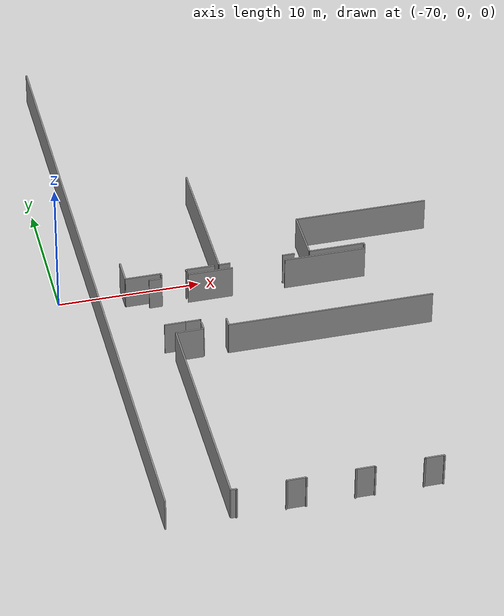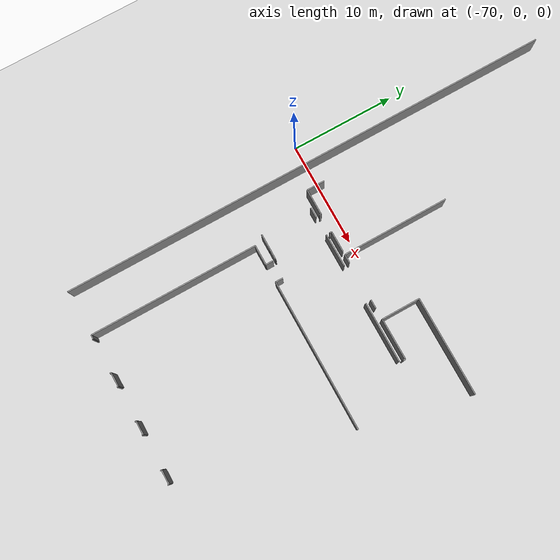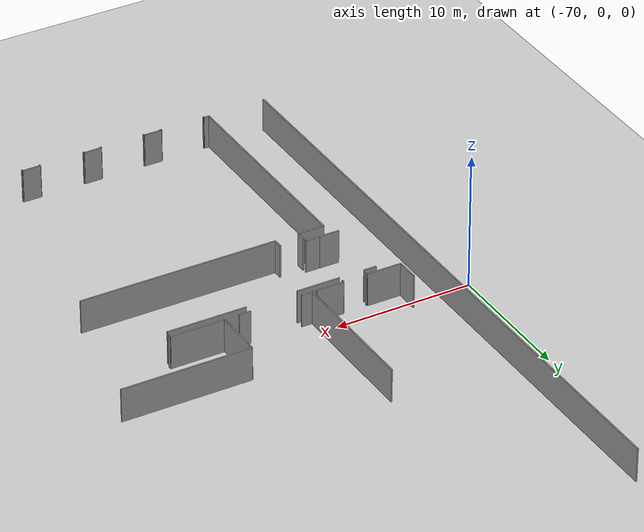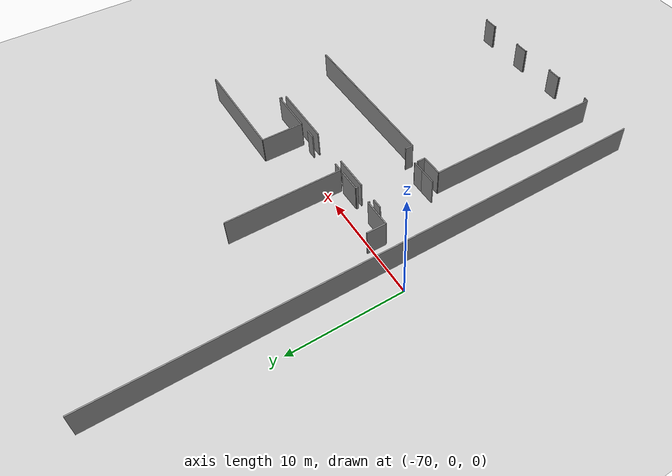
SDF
<sdf version="1.6">
 <world name="default">
  <model name="ground_plane">
   <static>1</static>
   <link name="link">
    <collision name="collision">
     <geometry><plane><normal>0 0 1</normal><size>100 100</size></plane></geometry>
     <surface><friction><ode><mu>100</mu><mu2>50</mu2></ode></friction></surface>
    </collision>
    <visual name="visual">
     <cast_shadows>0</cast_shadows>
     <geometry><plane><normal>0 0 1</normal><size>100 100</size></plane></geometry>
     <material>
      <script><uri>file://media/materials/scripts/gazebo.material</uri><name>Gazebo/Grey</name></script>
     </material>
    </visual>
   </link>
  </model>
  <model name="0510032194_A_40_1_102">
   <static>1</static>
   <link name="Wall_370">
    <collision name="Wall_370_Collision">
     <geometry><box><size>3.68148072816 0.1 2.5</size></box></geometry>
     <pose>1.84074036408 0 1.25 0 0 0</pose>
    </collision>
    <visual name="Wall_370_Visual">
     <pose>1.84074036408 0 1.25 0 0 0</pose>
     <geometry><box><size>3.68148072816 0.1 2.5</size></box></geometry>
     <material>
      <script><uri>file://media/materials/scripts/gazebo.material</uri><name>Gazebo/Grey</name></script>
      <ambient>1 1 1 1</ambient>
     </material>
    </visual>
    <pose>15.3845469338 -25.0689006407 0 0 0 1.57079632679</pose>
   </link>
   <link name="Wall_371">
    <collision name="Wall_371_Collision">
     <geometry><box><size>9.4392606529 0.1 2.5</size></box></geometry>
     <pose>4.71963032645 0 1.25 0 0 0</pose>
    </collision>
    <visual name="Wall_371_Visual">
     <pose>4.71963032645 0 1.25 0 0 0</pose>
     <geometry><box><size>9.4392606529 0.1 2.5</size></box></geometry>
     <material>
      <script><uri>file://media/materials/scripts/gazebo.material</uri><name>Gazebo/Grey</name></script>
      <ambient>1 1 1 1</ambient>
     </material>
    </visual>
    <pose>15.3845469338 -21.3874199125 0 0 0 0.0</pose>
   </link>
   <link name="Wall_375">
    <collision name="Wall_375_Collision">
     <geometry><box><size>0.215219159972 0.1 2.5</size></box></geometry>
     <pose>0.107609579986 0 1.25 0 0 0</pose>
    </collision>
    <visual name="Wall_375_Visual">
     <pose>0.107609579986 0 1.25 0 0 0</pose>
     <geometry><box><size>0.215219159972 0.1 2.5</size></box></geometry>
     <material>
      <script><uri>file://media/materials/scripts/gazebo.material</uri><name>Gazebo/Grey</name></script>
      <ambient>1 1 1 1</ambient>
     </material>
    </visual>
    <pose>19.3267568392 -25.2786535137 0 0 0 1.57079632679</pose>
   </link>
   <link name="Wall_376">
    <collision name="Wall_376_Collision">
     <geometry><box><size>3.94221369521 0.1 2.5</size></box></geometry>
     <pose>1.9711068476 0 1.25 0 0 0</pose>
    </collision>
    <visual name="Wall_376_Visual">
     <pose>1.9711068476 0 1.25 0 0 0</pose>
     <geometry><box><size>3.94221369521 0.1 2.5</size></box></geometry>
     <material>
      <script><uri>file://media/materials/scripts/gazebo.material</uri><name>Gazebo/Grey</name></script>
      <ambient>1 1 1 1</ambient>
     </material>
    </visual>
    <pose>19.3267568392 -25.0634343537 0 0 0 -3.14020604973</pose>
   </link>
   <link name="Wall_377">
    <collision name="Wall_377_Collision">
     <geometry><box><size>16.0416454795 0.1 2.5</size></box></geometry>
     <pose>8.02082273975 0 1.25 0 0 0</pose>
    </collision>
    <visual name="Wall_377_Visual">
     <pose>8.02082273975 0 1.25 0 0 0</pose>
     <geometry><box><size>16.0416454795 0.1 2.5</size></box></geometry>
     <material>
      <script><uri>file://media/materials/scripts/gazebo.material</uri><name>Gazebo/Grey</name></script>
      <ambient>1 1 1 1</ambient>
     </material>
    </visual>
    <pose>4.35535950371 -47.5795789688 0 0 0 1.57079632679</pose>
   </link>
   <link name="Wall_378">
    <collision name="Wall_378_Collision">
     <geometry><box><size>1.93582833316 0.1 2.5</size></box></geometry>
     <pose>0.967914166582 0 1.25 0 0 0</pose>
    </collision>
    <visual name="Wall_378_Visual">
     <pose>0.967914166582 0 1.25 0 0 0</pose>
     <geometry><box><size>1.93582833316 0.1 2.5</size></box></geometry>
     <material>
      <script><uri>file://media/materials/scripts/gazebo.material</uri><name>Gazebo/Grey</name></script>
      <ambient>1 1 1 1</ambient>
     </material>
    </visual>
    <pose>4.35535950371 -31.5379334893 0 0 0 0.0</pose>
   </link>
   <link name="Wall_379">
    <collision name="Wall_379_Collision">
     <geometry><box><size>0.701591579376 0.1 2.5</size></box></geometry>
     <pose>0.350795789688 0 1.25 0 0 0</pose>
    </collision>
    <visual name="Wall_379_Visual">
     <pose>0.350795789688 0 1.25 0 0 0</pose>
     <geometry><box><size>0.701591579376 0.1 2.5</size></box></geometry>
     <material>
      <script><uri>file://media/materials/scripts/gazebo.material</uri><name>Gazebo/Grey</name></script>
      <ambient>1 1 1 1</ambient>
     </material>
    </visual>
    <pose>6.29118783688 -31.5379334893 0 0 0 1.57079632679</pose>
   </link>
   <link name="Wall_380">
    <collision name="Wall_380_Collision">
     <geometry><box><size>0.69370995627 0.1 2.5</size></box></geometry>
     <pose>0.346854978135 0 1.25 0 0 0</pose>
    </collision>
    <visual name="Wall_380_Visual">
     <pose>0.346854978135 0 1.25 0 0 0</pose>
     <geometry><box><size>0.69370995627 0.1 2.5</size></box></geometry>
     <material>
      <script><uri>file://media/materials/scripts/gazebo.material</uri><name>Gazebo/Grey</name></script>
      <ambient>1 1 1 1</ambient>
     </material>
    </visual>
    <pose>8.04561171565 -30.8363419099 0 0 0 -1.57079632679</pose>
   </link>
   <link name="Wall_381">
    <collision name="Wall_381_Collision">
     <geometry><box><size>14.4658293501 0.1 2.5</size></box></geometry>
     <pose>7.23291467507 0 1.25 0 0 0</pose>
    </collision>
    <visual name="Wall_381_Visual">
     <pose>7.23291467507 0 1.25 0 0 0</pose>
     <geometry><box><size>14.4658293501 0.1 2.5</size></box></geometry>
     <material>
      <script><uri>file://media/materials/scripts/gazebo.material</uri><name>Gazebo/Grey</name></script>
      <ambient>1 1 1 1</ambient>
     </material>
    </visual>
    <pose>8.04561171565 -31.5300518662 0 0 0 0.0</pose>
   </link>
   <link name="Wall_386">
    <collision name="Wall_386_Collision">
     <geometry><box><size>0.124072002441 0.1 2.5</size></box></geometry>
     <pose>0.0620360012204 0 1.25 0 0 0</pose>
    </collision>
    <visual name="Wall_386_Visual">
     <pose>0.0620360012204 0 1.25 0 0 0</pose>
     <geometry><box><size>0.124072002441 0.1 2.5</size></box></geometry>
     <material>
      <script><uri>file://media/materials/scripts/gazebo.material</uri><name>Gazebo/Grey</name></script>
      <ambient>1 1 1 1</ambient>
     </material>
    </visual>
    <pose>18.6925404251 -47.6858537578 0 0 0 1.57079632679</pose>
   </link>
   <link name="Wall_387">
    <collision name="Wall_387_Collision">
     <geometry><box><size>1.32449405065 0.1 2.5</size></box></geometry>
     <pose>0.662247025323 0 1.25 0 0 0</pose>
    </collision>
    <visual name="Wall_387_Visual">
     <pose>0.662247025323 0 1.25 0 0 0</pose>
     <geometry><box><size>1.32449405065 0.1 2.5</size></box></geometry>
     <material>
      <script><uri>file://media/materials/scripts/gazebo.material</uri><name>Gazebo/Grey</name></script>
      <ambient>1 1 1 1</ambient>
     </material>
    </visual>
    <pose>18.6925404251 -47.5617817553 0 0 0 3.14159265359</pose>
   </link>
   <link name="Wall_388">
    <collision name="Wall_388_Collision">
     <geometry><box><size>0.124072002441 0.1 2.5</size></box></geometry>
     <pose>0.0620360012204 0 1.25 0 0 0</pose>
    </collision>
    <visual name="Wall_388_Visual">
     <pose>0.0620360012204 0 1.25 0 0 0</pose>
     <geometry><box><size>0.124072002441 0.1 2.5</size></box></geometry>
     <material>
      <script><uri>file://media/materials/scripts/gazebo.material</uri><name>Gazebo/Grey</name></script>
      <ambient>1 1 1 1</ambient>
     </material>
    </visual>
    <pose>17.3680463745 -47.5617817553 0 0 0 -1.57079632679</pose>
   </link>
   <link name="Wall_389">
    <collision name="Wall_389_Collision">
     <geometry><box><size>0.119495576121 0.1 2.5</size></box></geometry>
     <pose>0.0597477880606 0 1.25 0 0 0</pose>
    </collision>
    <visual name="Wall_389_Visual">
     <pose>0.0597477880606 0 1.25 0 0 0</pose>
     <geometry><box><size>0.119495576121 0.1 2.5</size></box></geometry>
     <material>
      <script><uri>file://media/materials/scripts/gazebo.material</uri><name>Gazebo/Grey</name></script>
      <ambient>1 1 1 1</ambient>
     </material>
    </visual>
    <pose>14.0275094071 -47.6858537578 0 0 0 1.57079632679</pose>
   </link>
   <link name="Wall_390">
    <collision name="Wall_390_Collision">
     <geometry><box><size>1.30466286993 0.1 2.5</size></box></geometry>
     <pose>0.652331434964 0 1.25 0 0 0</pose>
    </collision>
    <visual name="Wall_390_Visual">
     <pose>0.652331434964 0 1.25 0 0 0</pose>
     <geometry><box><size>1.30466286993 0.1 2.5</size></box></geometry>
     <material>
      <script><uri>file://media/materials/scripts/gazebo.material</uri><name>Gazebo/Grey</name></script>
      <ambient>1 1 1 1</ambient>
     </material>
    </visual>
    <pose>14.0275094071 -47.5663581816 0 0 0 3.14159265359</pose>
   </link>
   <link name="Wall_391">
    <collision name="Wall_391_Collision">
     <geometry><box><size>0.124199125394 0.1 2.5</size></box></geometry>
     <pose>0.062099562697 0 1.25 0 0 0</pose>
    </collision>
    <visual name="Wall_391_Visual">
     <pose>0.062099562697 0 1.25 0 0 0</pose>
     <geometry><box><size>0.124199125394 0.1 2.5</size></box></geometry>
     <material>
      <script><uri>file://media/materials/scripts/gazebo.material</uri><name>Gazebo/Grey</name></script>
      <ambient>1 1 1 1</ambient>
     </material>
    </visual>
    <pose>12.7228465372 -47.5663581816 0 0 0 -1.57079632679</pose>
   </link>
   <link name="Wall_392">
    <collision name="Wall_392_Collision">
     <geometry><box><size>0.123817756534 0.1 2.5</size></box></geometry>
     <pose>0.0619088782671 0 1.25 0 0 0</pose>
    </collision>
    <visual name="Wall_392_Visual">
     <pose>0.0619088782671 0 1.25 0 0 0</pose>
     <geometry><box><size>0.123817756534 0.1 2.5</size></box></geometry>
     <material>
      <script><uri>file://media/materials/scripts/gazebo.material</uri><name>Gazebo/Grey</name></script>
      <ambient>1 1 1 1</ambient>
     </material>
    </visual>
    <pose>9.39832706193 -47.690557307 0 0 0 1.57079632679</pose>
   </link>
   <link name="Wall_393">
    <collision name="Wall_393_Collision">
     <geometry><box><size>1.32157022272 0.1 2.5</size></box></geometry>
     <pose>0.66078511136 0 1.25 0 0 0</pose>
    </collision>
    <visual name="Wall_393_Visual">
     <pose>0.66078511136 0 1.25 0 0 0</pose>
     <geometry><box><size>1.32157022272 0.1 2.5</size></box></geometry>
     <material>
      <script><uri>file://media/materials/scripts/gazebo.material</uri><name>Gazebo/Grey</name></script>
      <ambient>1 1 1 1</ambient>
     </material>
    </visual>
    <pose>9.39832706193 -47.5667395505 0 0 0 3.14159265359</pose>
   </link>
   <link name="Wall_394">
    <collision name="Wall_394_Collision">
     <geometry><box><size>0.128902674667 0.1 2.5</size></box></geometry>
     <pose>0.0644513373335 0 1.25 0 0 0</pose>
    </collision>
    <visual name="Wall_394_Visual">
     <pose>0.0644513373335 0 1.25 0 0 0</pose>
     <geometry><box><size>0.128902674667 0.1 2.5</size></box></geometry>
     <material>
      <script><uri>file://media/materials/scripts/gazebo.material</uri><name>Gazebo/Grey</name></script>
      <ambient>1 1 1 1</ambient>
     </material>
    </visual>
    <pose>8.07675683921 -47.5667395505 0 0 0 -1.57079632679</pose>
   </link>
   <link name="Wall_395">
    <collision name="Wall_395_Collision">
     <geometry><box><size>0.0910200345774 0.1 2.5</size></box></geometry>
     <pose>0.0455100172887 0 1.25 0 0 0</pose>
    </collision>
    <visual name="Wall_395_Visual">
     <pose>0.0455100172887 0 1.25 0 0 0</pose>
     <geometry><box><size>0.0910200345774 0.1 2.5</size></box></geometry>
     <material>
      <script><uri>file://media/materials/scripts/gazebo.material</uri><name>Gazebo/Grey</name></script>
      <ambient>1 1 1 1</ambient>
     </material>
    </visual>
    <pose>4.73710973253 -47.6956422252 0 0 0 1.57079632679</pose>
   </link>
   <link name="Wall_396">
    <collision name="Wall_396_Collision">
     <geometry><box><size>0.382570777979 0.1 2.5</size></box></geometry>
     <pose>0.191285388989 0 1.25 0 0 0</pose>
    </collision>
    <visual name="Wall_396_Visual">
     <pose>0.191285388989 0 1.25 0 0 0</pose>
     <geometry><box><size>0.382570777979 0.1 2.5</size></box></geometry>
     <material>
      <script><uri>file://media/materials/scripts/gazebo.material</uri><name>Gazebo/Grey</name></script>
      <ambient>1 1 1 1</ambient>
     </material>
    </visual>
    <pose>4.73710973253 -47.6046221906 0 0 0 3.07608545047</pose>
   </link>
   <link name="Wall_397">
    <collision name="Wall_397_Collision">
     <geometry><box><size>1.45810027459 0.1 2.5</size></box></geometry>
     <pose>0.729050137293 0 1.25 0 0 0</pose>
    </collision>
    <visual name="Wall_397_Visual">
     <pose>0.729050137293 0 1.25 0 0 0</pose>
     <geometry><box><size>1.45810027459 0.1 2.5</size></box></geometry>
     <material>
      <script><uri>file://media/materials/scripts/gazebo.material</uri><name>Gazebo/Grey</name></script>
      <ambient>1 1 1 1</ambient>
     </material>
    </visual>
    <pose>5.22971117665 -30.5632818062 0 0 0 3.14159265359</pose>
   </link>
   <link name="Wall_398">
    <collision name="Wall_398_Collision">
     <geometry><box><size>0.926344960846 0.1 2.5</size></box></geometry>
     <pose>0.463172480423 0 1.25 0 0 0</pose>
    </collision>
    <visual name="Wall_398_Visual">
     <pose>0.463172480423 0 1.25 0 0 0</pose>
     <geometry><box><size>0.926344960846 0.1 2.5</size></box></geometry>
     <material>
      <script><uri>file://media/materials/scripts/gazebo.material</uri><name>Gazebo/Grey</name></script>
      <ambient>1 1 1 1</ambient>
     </material>
    </visual>
    <pose>3.77161090206 -25.6259534221 0 0 0 0.0</pose>
   </link>
   <link name="Wall_399">
    <collision name="Wall_399_Collision">
     <geometry><box><size>3.17286179193 0.1 2.5</size></box></geometry>
     <pose>1.58643089596 0 1.25 0 0 0</pose>
    </collision>
    <visual name="Wall_399_Visual">
     <pose>1.58643089596 0 1.25 0 0 0</pose>
     <geometry><box><size>3.17286179193 0.1 2.5</size></box></geometry>
     <material>
      <script><uri>file://media/materials/scripts/gazebo.material</uri><name>Gazebo/Grey</name></script>
      <ambient>1 1 1 1</ambient>
     </material>
    </visual>
    <pose>6.54823044849 -25.6259534221 0 0 0 0.0</pose>
   </link>
   <link name="Wall_400">
    <collision name="Wall_400_Collision">
     <geometry><box><size>5.78905217126 0.1 2.5</size></box></geometry>
     <pose>2.89452608563 0 1.25 0 0 0</pose>
    </collision>
    <visual name="Wall_400_Visual">
     <pose>2.89452608563 0 1.25 0 0 0</pose>
     <geometry><box><size>5.78905217126 0.1 2.5</size></box></geometry>
     <material>
      <script><uri>file://media/materials/scripts/gazebo.material</uri><name>Gazebo/Grey</name></script>
      <ambient>1 1 1 1</ambient>
     </material>
    </visual>
    <pose>13.475033052 -25.6259534221 0 0 0 0.0</pose>
   </link>
   <link name="Wall_408">
    <collision name="Wall_408_Collision">
     <geometry><box><size>0.0466541238686 0.1 2.5</size></box></geometry>
     <pose>0.0233270619343 0 1.25 0 0 0</pose>
    </collision>
    <visual name="Wall_408_Visual">
     <pose>0.0233270619343 0 1.25 0 0 0</pose>
     <geometry><box><size>0.0466541238686 0.1 2.5</size></box></geometry>
     <material>
      <script><uri>file://media/materials/scripts/gazebo.material</uri><name>Gazebo/Grey</name></script>
      <ambient>1 1 1 1</ambient>
     </material>
    </visual>
    <pose>6.27911115631 -30.5251449202 0 0 0 -1.57079632679</pose>
   </link>
   <link name="Wall_409">
    <collision name="Wall_409_Collision">
     <geometry><box><size>1.04943454329 0.1 2.5</size></box></geometry>
     <pose>0.524717271645 0 1.25 0 0 0</pose>
    </collision>
    <visual name="Wall_409_Visual">
     <pose>0.524717271645 0 1.25 0 0 0</pose>
     <geometry><box><size>1.04943454329 0.1 2.5</size></box></geometry>
     <material>
      <script><uri>file://media/materials/scripts/gazebo.material</uri><name>Gazebo/Grey</name></script>
      <ambient>1 1 1 1</ambient>
     </material>
    </visual>
    <pose>6.27911115631 -30.571799044 0 0 0 3.13347653865</pose>
   </link>
   <link name="Wall_410">
    <collision name="Wall_410_Collision">
     <geometry><box><size>1.71476151734 0.1 2.5</size></box></geometry>
     <pose>0.85738075867 0 1.25 0 0 0</pose>
    </collision>
    <visual name="Wall_410_Visual">
     <pose>0.85738075867 0 1.25 0 0 0</pose>
     <geometry><box><size>1.71476151734 0.1 2.5</size></box></geometry>
     <material>
      <script><uri>file://media/materials/scripts/gazebo.material</uri><name>Gazebo/Grey</name></script>
      <ambient>1 1 1 1</ambient>
     </material>
    </visual>
    <pose>2.19477778908 -25.1161903793 0 0 0 1.57079632679</pose>
   </link>
   <link name="Wall_414">
    <collision name="Wall_414_Collision">
     <geometry><box><size>2.01540730194 0.1 2.5</size></box></geometry>
     <pose>1.00770365097 0 1.25 0 0 0</pose>
    </collision>
    <visual name="Wall_414_Visual">
     <pose>1.00770365097 0 1.25 0 0 0</pose>
     <geometry><box><size>2.01540730194 0.1 2.5</size></box></geometry>
     <material>
      <script><uri>file://media/materials/scripts/gazebo.material</uri><name>Gazebo/Grey</name></script>
      <ambient>1 1 1 1</ambient>
     </material>
    </visual>
    <pose>8.54825587308 -25.0896216821 0 0 0 3.14159265359</pose>
   </link>
   <link name="Wall_415">
    <collision name="Wall_415_Collision">
     <geometry><box><size>0.189031831588 0.1 2.5</size></box></geometry>
     <pose>0.0945159157938 0 1.25 0 0 0</pose>
    </collision>
    <visual name="Wall_415_Visual">
     <pose>0.0945159157938 0 1.25 0 0 0</pose>
     <geometry><box><size>0.189031831588 0.1 2.5</size></box></geometry>
     <material>
      <script><uri>file://media/materials/scripts/gazebo.material</uri><name>Gazebo/Grey</name></script>
      <ambient>1 1 1 1</ambient>
     </material>
    </visual>
    <pose>6.53284857114 -25.0896216821 0 0 0 -1.57079632679</pose>
   </link>
   <link name="Wall_416">
    <collision name="Wall_416_Collision">
     <geometry><box><size>0.16119190481 0.1 2.5</size></box></geometry>
     <pose>0.0805959524052 0 1.25 0 0 0</pose>
    </collision>
    <visual name="Wall_416_Visual">
     <pose>0.0805959524052 0 1.25 0 0 0</pose>
     <geometry><box><size>0.16119190481 0.1 2.5</size></box></geometry>
     <material>
      <script><uri>file://media/materials/scripts/gazebo.material</uri><name>Gazebo/Grey</name></script>
      <ambient>1 1 1 1</ambient>
     </material>
    </visual>
    <pose>4.72007525679 -25.2786535137 0 0 0 1.57079632679</pose>
   </link>
   <link name="Wall_417">
    <collision name="Wall_417_Collision">
     <geometry><box><size>2.52529778768 0.1 2.5</size></box></geometry>
     <pose>1.26264889384 0 1.25 0 0 0</pose>
    </collision>
    <visual name="Wall_417_Visual">
     <pose>1.26264889384 0 1.25 0 0 0</pose>
     <geometry><box><size>2.52529778768 0.1 2.5</size></box></geometry>
     <material>
      <script><uri>file://media/materials/scripts/gazebo.material</uri><name>Gazebo/Grey</name></script>
      <ambient>1 1 1 1</ambient>
     </material>
    </visual>
    <pose>4.72007525679 -25.1174616089 0 0 0 3.1410892557</pose>
   </link>
   <link name="Wall_418">
    <collision name="Wall_418_Collision">
     <geometry><box><size>10.220685447 0.1 2.5</size></box></geometry>
     <pose>5.11034272348 0 1.25 0 0 0</pose>
    </collision>
    <visual name="Wall_418_Visual">
     <pose>5.11034272348 0 1.25 0 0 0</pose>
     <geometry><box><size>10.220685447 0.1 2.5</size></box></geometry>
     <material>
      <script><uri>file://media/materials/scripts/gazebo.material</uri><name>Gazebo/Grey</name></script>
      <ambient>1 1 1 1</ambient>
     </material>
    </visual>
    <pose>8.87648733855 -25.0842825181 0 0 0 1.57079632679</pose>
   </link>
   <link name="Wall_421">
    <collision name="Wall_421_Collision">
     <geometry><box><size>0.850198311807 0.1 2.5</size></box></geometry>
     <pose>0.425099155904 0 1.25 0 0 0</pose>
    </collision>
    <visual name="Wall_421_Visual">
     <pose>0.425099155904 0 1.25 0 0 0</pose>
     <geometry><box><size>0.850198311807 0.1 2.5</size></box></geometry>
     <material>
      <script><uri>file://media/materials/scripts/gazebo.material</uri><name>Gazebo/Grey</name></script>
      <ambient>1 1 1 1</ambient>
     </material>
    </visual>
    <pose>14.2930692566 -25.0880962067 0 0 0 3.14159265359</pose>
   </link>
   <link name="Wall_422">
    <collision name="Wall_422_Collision">
     <geometry><box><size>0.808002491464 0.1 2.5</size></box></geometry>
     <pose>0.404001245732 0 1.25 0 0 0</pose>
    </collision>
    <visual name="Wall_422_Visual">
     <pose>0.404001245732 0 1.25 0 0 0</pose>
     <geometry><box><size>0.808002491464 0.1 2.5</size></box></geometry>
     <material>
      <script><uri>file://media/materials/scripts/gazebo.material</uri><name>Gazebo/Grey</name></script>
      <ambient>1 1 1 1</ambient>
     </material>
    </visual>
    <pose>9.68448082986 -25.0880962067 0 0 0 3.13687273899</pose>
   </link>
   <link name="Wall_425">
    <collision name="Wall_425_Collision">
     <geometry><box><size>47.7002186515 0.1 2.5</size></box></geometry>
     <pose>23.8501093257 0 1.25 0 0 0</pose>
    </collision>
    <visual name="Wall_425_Visual">
     <pose>23.8501093257 0 1.25 0 0 0</pose>
     <geometry><box><size>47.7002186515 0.1 2.5</size></box></geometry>
     <material>
      <script><uri>file://media/materials/scripts/gazebo.material</uri><name>Gazebo/Grey</name></script>
      <ambient>1 1 1 1</ambient>
     </material>
    </visual>
    <pose>0.0 -47.7002186515 0 0 0 1.57079632679</pose>
   </link>
   <pose>-67.7 23.8502186515 0 0 0 0</pose>
  </model>
 </world>
</sdf>
